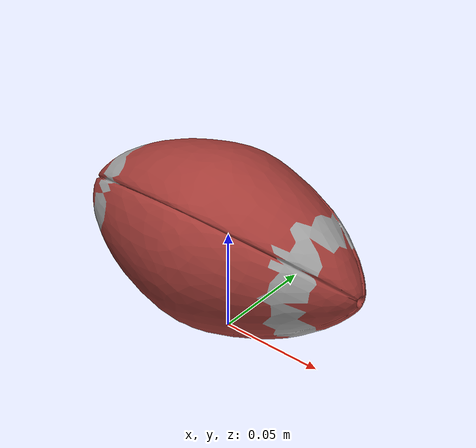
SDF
<?xml version="1.0" ?>
<sdf version="1.5">
	<model name="Football">
		<link name="Obj_5">
			<pose>0 0 0.05 0 0 0</pose>
			<inertial>
				<mass>36.96764373779297</mass>
				<pose>0.0002767220139503479 -0.0027475282549858093 -0.0002614259719848633 4.967053541804489e-07 2.0178657678115997e-07 1.4357890165683784e-07</pose>
				<inertia>
					<ixx>0.047036720275878906</ixx>
					<ixy>0.0</ixy>
					<ixz>0.0</ixz>
					<iyy>0.09572296905517578</iyy>
					<iyz>0.0</iyz>
					<izz>0.09578512573242188</izz>
				</inertia>
			</inertial>
			<collision name="COL_Obj_5_Football_Coll">
				<pose>0.00024665892124176025 -0.002815559506416321 -0.00025914236903190613 4.2685610424086917e-07 1.2417633854511223e-07 1.1641532182693481e-08</pose>
				<geometry>
					<mesh>
						<uri>model://football/meshes/collisions/COL_Obj_5_Football_Coll.dae</uri>
						<scale>0.029999999329447746 0.029999999329447746 0.029999999329447746</scale>
					</mesh>
				</geometry>
			</collision>
			<visual name="VIS_Obj_5_Football">
				<pose>0.00024665892124176025 -0.002815559506416321 -0.00025914236903190613 4.2685610424086917e-07 1.2417633854511223e-07 1.1641532182693481e-08</pose>
				<geometry>
					<mesh>
						<uri>model://football/meshes/visual/VIS_Obj_5_Football.dae</uri>
						<scale>0.029999999329447746 0.029999999329447746 0.029999999329447746</scale>
					</mesh>
				</geometry>
			</visual>
		</link>
	</model>
</sdf>
